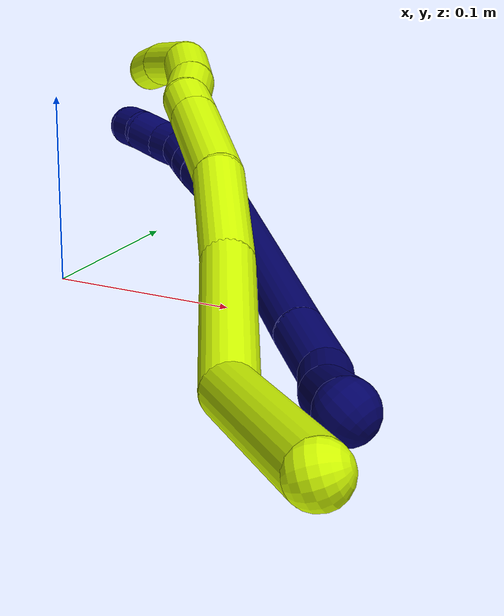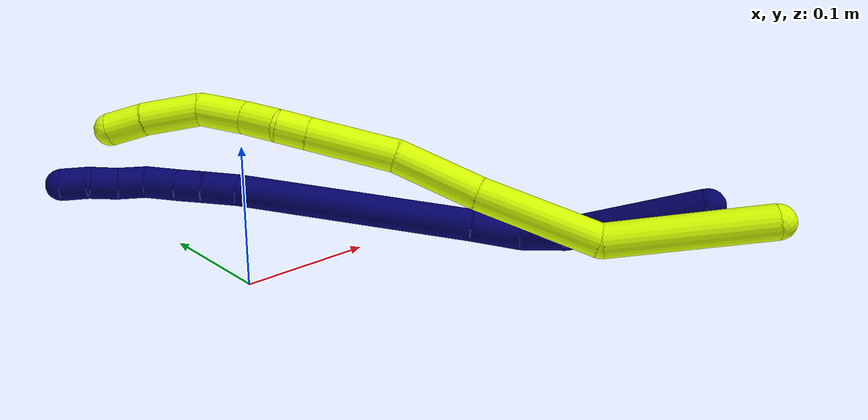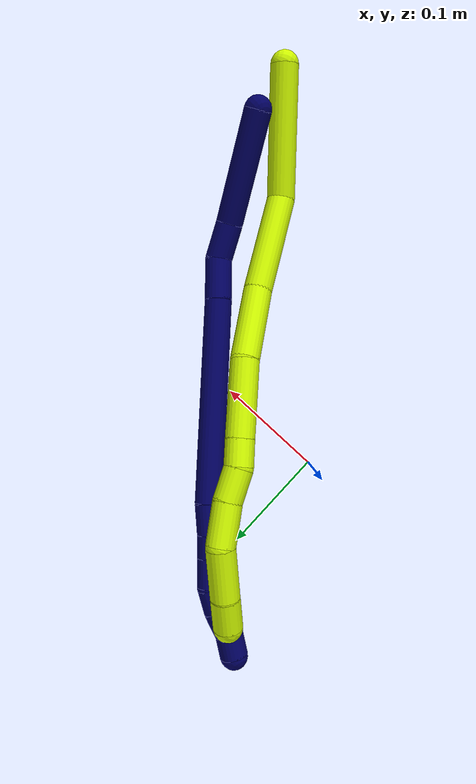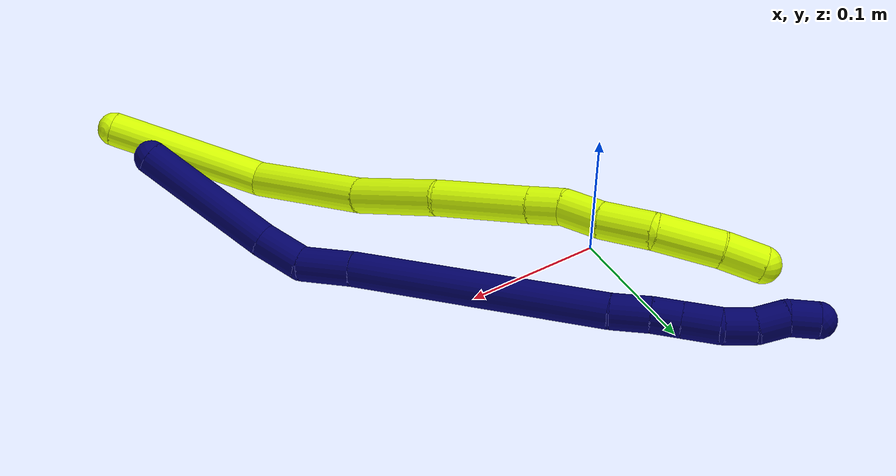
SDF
<sdf version="1.7">
 <world name="default">
  <model name="7">
   <static>0</static>
   <link name="7">
    <collision name="collision-cylinder-e_1_1_4">
     <pose>-0.037691 0.031161 -0.015806 -2.04021 -0.823251 1.23608</pose>
     <geometry><cylinder><radius>0.0125</radius><length>0.102789</length></cylinder></geometry>
     <surface>
      <friction><ode><mu>1.16</mu><mu2>1.16</mu2><slip1>0</slip1><slip2>0</slip2></ode></friction>
      <contact><ode><kp>1e+06</kp><kd>1</kd><max_vel>0</max_vel><min_depth>0.001</min_depth></ode></contact>
     </surface>
    </collision>
    <visual name="visual-cylinder-e_1_1_4">
     <pose>-0.037691 0.031161 -0.015806 -2.04021 -0.823251 1.23608</pose>
     <geometry><cylinder><radius>0.0125</radius><length>0.102789</length></cylinder></geometry>
     <material><ambient>0.003922 0 0.403922 1</ambient></material>
    </visual>
    <collision name="collision-cylinder-e_2_4_5">
     <pose>-0.089043 0.070042 -0.038671 -2.31152 -0.917264 1.68436</pose>
     <geometry><cylinder><radius>0.0125</radius><length>0.034416</length></cylinder></geometry>
     <surface>
      <friction><ode><mu>1.16</mu><mu2>1.16</mu2><slip1>0</slip1><slip2>0</slip2></ode></friction>
      <contact><ode><kp>1e+06</kp><kd>1</kd><max_vel>0</max_vel><min_depth>0.001</min_depth></ode></contact>
     </surface>
    </collision>
    <visual name="visual-cylinder-e_2_4_5">
     <pose>-0.089043 0.070042 -0.038671 -2.31152 -0.917264 1.68436</pose>
     <geometry><cylinder><radius>0.0125</radius><length>0.034416</length></cylinder></geometry>
     <material><ambient>0.003922 0 0.403922 1</ambient></material>
    </visual>
    <collision name="collision-cylinder-e_3_5_6">
     <pose>-0.114329 0.083895 -0.060327 -2.74385 -0.633313 2.03879</pose>
     <geometry><cylinder><radius>0.0125</radius><length>0.03928</length></cylinder></geometry>
     <surface>
      <friction><ode><mu>1.16</mu><mu2>1.16</mu2><slip1>0</slip1><slip2>0</slip2></ode></friction>
      <contact><ode><kp>1e+06</kp><kd>1</kd><max_vel>0</max_vel><min_depth>0.001</min_depth></ode></contact>
     </surface>
    </collision>
    <visual name="visual-cylinder-e_3_5_6">
     <pose>-0.114329 0.083895 -0.060327 -2.74385 -0.633313 2.03879</pose>
     <geometry><cylinder><radius>0.0125</radius><length>0.03928</length></cylinder></geometry>
     <material><ambient>0.003922 0 0.403922 1</ambient></material>
    </visual>
    <collision name="collision-cylinder-e_4_6_7">
     <pose>-0.183948 0.121075 -0.140354 -2.69855 -0.675222 2.00077</pose>
     <geometry><cylinder><radius>0.0125</radius><length>0.185567</length></cylinder></geometry>
     <surface>
      <friction><ode><mu>1.16</mu><mu2>1.16</mu2><slip1>0</slip1><slip2>0</slip2></ode></friction>
      <contact><ode><kp>1e+06</kp><kd>1</kd><max_vel>0</max_vel><min_depth>0.001</min_depth></ode></contact>
     </surface>
    </collision>
    <visual name="visual-cylinder-e_4_6_7">
     <pose>-0.183948 0.121075 -0.140354 -2.69855 -0.675222 2.00077</pose>
     <geometry><cylinder><radius>0.0125</radius><length>0.185567</length></cylinder></geometry>
     <material><ambient>0.003922 0 0.403922 1</ambient></material>
    </visual>
    <collision name="collision-cylinder-e_5_7_8">
     <pose>-0.249151 0.157468 -0.216197 -2.6672 -0.551942 1.72838</pose>
     <geometry><cylinder><radius>0.0125</radius><length>0.02749</length></cylinder></geometry>
     <surface>
      <friction><ode><mu>1.16</mu><mu2>1.16</mu2><slip1>0</slip1><slip2>0</slip2></ode></friction>
      <contact><ode><kp>1e+06</kp><kd>1</kd><max_vel>0</max_vel><min_depth>0.001</min_depth></ode></contact>
     </surface>
    </collision>
    <visual name="visual-cylinder-e_5_7_8">
     <pose>-0.249151 0.157468 -0.216197 -2.6672 -0.551942 1.72838</pose>
     <geometry><cylinder><radius>0.0125</radius><length>0.02749</length></cylinder></geometry>
     <material><ambient>0.003922 0 0.403922 1</ambient></material>
    </visual>
    <collision name="collision-cylinder-e_6_8_9">
     <pose>-0.262404 0.166963 -0.233955 -2.62763 -0.621721 1.77039</pose>
     <geometry><cylinder><radius>0.0125</radius><length>0.02076</length></cylinder></geometry>
     <surface>
      <friction><ode><mu>1.16</mu><mu2>1.16</mu2><slip1>0</slip1><slip2>0</slip2></ode></friction>
      <contact><ode><kp>1e+06</kp><kd>1</kd><max_vel>0</max_vel><min_depth>0.001</min_depth></ode></contact>
     </surface>
    </collision>
    <visual name="visual-cylinder-e_6_8_9">
     <pose>-0.262404 0.166963 -0.233955 -2.62763 -0.621721 1.77039</pose>
     <geometry><cylinder><radius>0.0125</radius><length>0.02076</length></cylinder></geometry>
     <material><ambient>0.003922 0 0.403922 1</ambient></material>
    </visual>
    <collision name="collision-cylinder-e_7_9_10">
     <pose>-0.276103 0.176015 -0.250456 -2.64977 -0.635169 1.83734</pose>
     <geometry><cylinder><radius>0.0125</radius><length>0.0258</length></cylinder></geometry>
     <surface>
      <friction><ode><mu>1.16</mu><mu2>1.16</mu2><slip1>0</slip1><slip2>0</slip2></ode></friction>
      <contact><ode><kp>1e+06</kp><kd>1</kd><max_vel>0</max_vel><min_depth>0.001</min_depth></ode></contact>
     </surface>
    </collision>
    <visual name="visual-cylinder-e_7_9_10">
     <pose>-0.276103 0.176015 -0.250456 -2.64977 -0.635169 1.83734</pose>
     <geometry><cylinder><radius>0.0125</radius><length>0.0258</length></cylinder></geometry>
     <material><ambient>0.003922 0 0.403922 1</ambient></material>
    </visual>
    <collision name="collision-cylinder-e_8_10_11">
     <pose>-0.287522 0.186482 -0.268136 -2.56343 -0.354237 1.08353</pose>
     <geometry><cylinder><radius>0.0125</radius><length>0.02171</length></cylinder></geometry>
     <surface>
      <friction><ode><mu>1.16</mu><mu2>1.16</mu2><slip1>0</slip1><slip2>0</slip2></ode></friction>
      <contact><ode><kp>1e+06</kp><kd>1</kd><max_vel>0</max_vel><min_depth>0.001</min_depth></ode></contact>
     </surface>
    </collision>
    <visual name="visual-cylinder-e_8_10_11">
     <pose>-0.287522 0.186482 -0.268136 -2.56343 -0.354237 1.08353</pose>
     <geometry><cylinder><radius>0.0125</radius><length>0.02171</length></cylinder></geometry>
     <material><ambient>0.003922 0 0.403922 1</ambient></material>
    </visual>
    <collision name="collision-cylinder-e_9_11_12">
     <pose>-0.292898 0.196328 -0.28659 -2.73442 -0.147844 0.688844</pose>
     <geometry><cylinder><radius>0.0125</radius><length>0.021862</length></cylinder></geometry>
     <surface>
      <friction><ode><mu>1.16</mu><mu2>1.16</mu2><slip1>0</slip1><slip2>0</slip2></ode></friction>
      <contact><ode><kp>1e+06</kp><kd>1</kd><max_vel>0</max_vel><min_depth>0.001</min_depth></ode></contact>
     </surface>
    </collision>
    <visual name="visual-cylinder-e_9_11_12">
     <pose>-0.292898 0.196328 -0.28659 -2.73442 -0.147844 0.688844</pose>
     <geometry><cylinder><radius>0.0125</radius><length>0.021862</length></cylinder></geometry>
     <material><ambient>0.003922 0 0.403922 1</ambient></material>
    </visual>
    <collision name="collision-cylinder-e_10_12_2">
     <pose>-0.298635 0.206028 -0.304062 -2.51869 -0.418083 1.16531</pose>
     <geometry><cylinder><radius>0.0125</radius><length>0.020327</length></cylinder></geometry>
     <surface>
      <friction><ode><mu>1.16</mu><mu2>1.16</mu2><slip1>0</slip1><slip2>0</slip2></ode></friction>
      <contact><ode><kp>1e+06</kp><kd>1</kd><max_vel>0</max_vel><min_depth>0.001</min_depth></ode></contact>
     </surface>
    </collision>
    <visual name="visual-cylinder-e_10_12_2">
     <pose>-0.298635 0.206028 -0.304062 -2.51869 -0.418083 1.16531</pose>
     <geometry><cylinder><radius>0.0125</radius><length>0.020327</length></cylinder></geometry>
     <material><ambient>0.003922 0 0.403922 1</ambient></material>
    </visual>
    <collision name="collision-sphere-2">
     <pose>-0.302761 0.211447 -0.311605 0 -0 0</pose>
     <geometry><sphere><radius>0.0125</radius></sphere></geometry>
     <surface>
      <friction><ode><mu>1.16</mu><mu2>1.16</mu2><slip1>0</slip1><slip2>0</slip2></ode></friction>
      <contact><ode><kp>1e+06</kp><kd>1</kd><max_vel>0</max_vel><min_depth>0.001</min_depth></ode></contact>
     </surface>
    </collision>
    <visual name="visual-sphere-2">
     <pose>-0.302761 0.211447 -0.311605 0 -0 0</pose>
     <geometry><sphere><radius>0.0125</radius></sphere></geometry>
     <material><ambient>0.003922 0 0.403922 1</ambient></material>
    </visual>
    <collision name="collision-sphere-12">
     <pose>-0.294508 0.200609 -0.296518 0 -0 0</pose>
     <geometry><sphere><radius>0.0125</radius></sphere></geometry>
     <surface>
      <friction><ode><mu>1.16</mu><mu2>1.16</mu2><slip1>0</slip1><slip2>0</slip2></ode></friction>
      <contact><ode><kp>1e+06</kp><kd>1</kd><max_vel>0</max_vel><min_depth>0.001</min_depth></ode></contact>
     </surface>
    </collision>
    <visual name="visual-sphere-12">
     <pose>-0.294508 0.200609 -0.296518 0 -0 0</pose>
     <geometry><sphere><radius>0.0125</radius></sphere></geometry>
     <material><ambient>0.003922 0 0.403922 1</ambient></material>
    </visual>
    <collision name="collision-sphere-11">
     <pose>-0.291288 0.192046 -0.276662 0 -0 0</pose>
     <geometry><sphere><radius>0.0125</radius></sphere></geometry>
     <surface>
      <friction><ode><mu>1.16</mu><mu2>1.16</mu2><slip1>0</slip1><slip2>0</slip2></ode></friction>
      <contact><ode><kp>1e+06</kp><kd>1</kd><max_vel>0</max_vel><min_depth>0.001</min_depth></ode></contact>
     </surface>
    </collision>
    <visual name="visual-sphere-11">
     <pose>-0.291288 0.192046 -0.276662 0 -0 0</pose>
     <geometry><sphere><radius>0.0125</radius></sphere></geometry>
     <material><ambient>0.003922 0 0.403922 1</ambient></material>
    </visual>
    <collision name="collision-sphere-10">
     <pose>-0.283757 0.180918 -0.259609 0 -0 0</pose>
     <geometry><sphere><radius>0.0125</radius></sphere></geometry>
     <surface>
      <friction><ode><mu>1.16</mu><mu2>1.16</mu2><slip1>0</slip1><slip2>0</slip2></ode></friction>
      <contact><ode><kp>1e+06</kp><kd>1</kd><max_vel>0</max_vel><min_depth>0.001</min_depth></ode></contact>
     </surface>
    </collision>
    <visual name="visual-sphere-10">
     <pose>-0.283757 0.180918 -0.259609 0 -0 0</pose>
     <geometry><sphere><radius>0.0125</radius></sphere></geometry>
     <material><ambient>0.003922 0 0.403922 1</ambient></material>
    </visual>
    <collision name="collision-sphere-9">
     <pose>-0.26845 0.171111 -0.241303 0 -0 0</pose>
     <geometry><sphere><radius>0.0125</radius></sphere></geometry>
     <surface>
      <friction><ode><mu>1.16</mu><mu2>1.16</mu2><slip1>0</slip1><slip2>0</slip2></ode></friction>
      <contact><ode><kp>1e+06</kp><kd>1</kd><max_vel>0</max_vel><min_depth>0.001</min_depth></ode></contact>
     </surface>
    </collision>
    <visual name="visual-sphere-9">
     <pose>-0.26845 0.171111 -0.241303 0 -0 0</pose>
     <geometry><sphere><radius>0.0125</radius></sphere></geometry>
     <material><ambient>0.003922 0 0.403922 1</ambient></material>
    </visual>
    <collision name="collision-sphere-4">
     <pose>-0.075381 0.062321 -0.031611 0 -0 0</pose>
     <geometry><sphere><radius>0.0125</radius></sphere></geometry>
     <surface>
      <friction><ode><mu>1.16</mu><mu2>1.16</mu2><slip1>0</slip1><slip2>0</slip2></ode></friction>
      <contact><ode><kp>1e+06</kp><kd>1</kd><max_vel>0</max_vel><min_depth>0.001</min_depth></ode></contact>
     </surface>
    </collision>
    <visual name="visual-sphere-4">
     <pose>-0.075381 0.062321 -0.031611 0 -0 0</pose>
     <geometry><sphere><radius>0.0125</radius></sphere></geometry>
     <material><ambient>0.003922 0 0.403922 1</ambient></material>
    </visual>
    <collision name="collision-sphere-1">
     <geometry><sphere><radius>0.0125</radius></sphere></geometry>
     <surface>
      <friction><ode><mu>1.16</mu><mu2>1.16</mu2><slip1>0</slip1><slip2>0</slip2></ode></friction>
      <contact><ode><kp>1e+06</kp><kd>1</kd><max_vel>0</max_vel><min_depth>0.001</min_depth></ode></contact>
     </surface>
    </collision>
    <visual name="visual-sphere-1">
     <geometry><sphere><radius>0.0125</radius></sphere></geometry>
     <material><ambient>0.003922 0 0.403922 1</ambient></material>
    </visual>
    <collision name="collision-sphere-8">
     <pose>-0.256358 0.162815 -0.226608 0 -0 0</pose>
     <geometry><sphere><radius>0.0125</radius></sphere></geometry>
     <surface>
      <friction><ode><mu>1.16</mu><mu2>1.16</mu2><slip1>0</slip1><slip2>0</slip2></ode></friction>
      <contact><ode><kp>1e+06</kp><kd>1</kd><max_vel>0</max_vel><min_depth>0.001</min_depth></ode></contact>
     </surface>
    </collision>
    <visual name="visual-sphere-8">
     <pose>-0.256358 0.162815 -0.226608 0 -0 0</pose>
     <geometry><sphere><radius>0.0125</radius></sphere></geometry>
     <material><ambient>0.003922 0 0.403922 1</ambient></material>
    </visual>
    <collision name="collision-sphere-5">
     <pose>-0.102705 0.077763 -0.045732 0 -0 0</pose>
     <geometry><sphere><radius>0.0125</radius></sphere></geometry>
     <surface>
      <friction><ode><mu>1.16</mu><mu2>1.16</mu2><slip1>0</slip1><slip2>0</slip2></ode></friction>
      <contact><ode><kp>1e+06</kp><kd>1</kd><max_vel>0</max_vel><min_depth>0.001</min_depth></ode></contact>
     </surface>
    </collision>
    <visual name="visual-sphere-5">
     <pose>-0.102705 0.077763 -0.045732 0 -0 0</pose>
     <geometry><sphere><radius>0.0125</radius></sphere></geometry>
     <material><ambient>0.003922 0 0.403922 1</ambient></material>
    </visual>
    <collision name="collision-sphere-6">
     <pose>-0.125952 0.090027 -0.074922 0 -0 0</pose>
     <geometry><sphere><radius>0.0125</radius></sphere></geometry>
     <surface>
      <friction><ode><mu>1.16</mu><mu2>1.16</mu2><slip1>0</slip1><slip2>0</slip2></ode></friction>
      <contact><ode><kp>1e+06</kp><kd>1</kd><max_vel>0</max_vel><min_depth>0.001</min_depth></ode></contact>
     </surface>
    </collision>
    <visual name="visual-sphere-6">
     <pose>-0.125952 0.090027 -0.074922 0 -0 0</pose>
     <geometry><sphere><radius>0.0125</radius></sphere></geometry>
     <material><ambient>0.003922 0 0.403922 1</ambient></material>
    </visual>
    <collision name="collision-sphere-7">
     <pose>-0.241944 0.152122 -0.205785 0 -0 0</pose>
     <geometry><sphere><radius>0.0125</radius></sphere></geometry>
     <surface>
      <friction><ode><mu>1.16</mu><mu2>1.16</mu2><slip1>0</slip1><slip2>0</slip2></ode></friction>
      <contact><ode><kp>1e+06</kp><kd>1</kd><max_vel>0</max_vel><min_depth>0.001</min_depth></ode></contact>
     </surface>
    </collision>
    <visual name="visual-sphere-7">
     <pose>-0.241944 0.152122 -0.205785 0 -0 0</pose>
     <geometry><sphere><radius>0.0125</radius></sphere></geometry>
     <material><ambient>0.003922 0 0.403922 1</ambient></material>
    </visual>
    <inertial>
     <pose>-0.1674 0.112482 -0.133799 0 -0 0</pose>
     <mass>0.5</mass>
     <inertia>
      <ixx>0.000281</ixx>
      <ixy>0</ixy>
      <ixz>0</ixz>
      <iyy>0.000865</iyy>
      <iyz>0</iyz>
      <izz>0.000148</izz>
     </inertia>
    </inertial>
   </link>
   <pose>0.251404 -0.199844 0.051773 -2.14383 0.002343 -1.76456</pose>
  </model>
  <model name="15">
   <static>0</static>
   <link name="15">
    <collision name="collision-cylinder-e_1_1_4">
     <pose>-0.030392 0.042224 -0.025613 -2.11606 -0.551682 0.931716</pose>
     <geometry><cylinder><radius>0.0125</radius><length>0.115975</length></cylinder></geometry>
     <surface>
      <friction><ode><mu>1.16</mu><mu2>1.16</mu2><slip1>0</slip1><slip2>0</slip2></ode></friction>
      <contact><ode><kp>1e+06</kp><kd>1</kd><max_vel>0</max_vel><min_depth>0.001</min_depth></ode></contact>
     </surface>
    </collision>
    <visual name="visual-cylinder-e_1_1_4">
     <pose>-0.030392 0.042224 -0.025613 -2.11606 -0.551682 0.931716</pose>
     <geometry><cylinder><radius>0.0125</radius><length>0.115975</length></cylinder></geometry>
     <material><ambient>0.835294 1 0 1</ambient></material>
    </visual>
    <collision name="collision-cylinder-e_2_4_5">
     <pose>-0.097952 0.110582 -0.055009 -1.71455 -0.953059 1.0754</pose>
     <geometry><cylinder><radius>0.0125</radius><length>0.091186</length></cylinder></geometry>
     <surface>
      <friction><ode><mu>1.16</mu><mu2>1.16</mu2><slip1>0</slip1><slip2>0</slip2></ode></friction>
      <contact><ode><kp>1e+06</kp><kd>1</kd><max_vel>0</max_vel><min_depth>0.001</min_depth></ode></contact>
     </surface>
    </collision>
    <visual name="visual-cylinder-e_2_4_5">
     <pose>-0.097952 0.110582 -0.055009 -1.71455 -0.953059 1.0754</pose>
     <geometry><cylinder><radius>0.0125</radius><length>0.091186</length></cylinder></geometry>
     <material><ambient>0.835294 1 0 1</ambient></material>
    </visual>
    <collision name="collision-cylinder-e_3_5_6">
     <pose>-0.16356 0.152484 -0.062125 -1.77912 -1.05527 1.24647</pose>
     <geometry><cylinder><radius>0.0125</radius><length>0.065378</length></cylinder></geometry>
     <surface>
      <friction><ode><mu>1.16</mu><mu2>1.16</mu2><slip1>0</slip1><slip2>0</slip2></ode></friction>
      <contact><ode><kp>1e+06</kp><kd>1</kd><max_vel>0</max_vel><min_depth>0.001</min_depth></ode></contact>
     </surface>
    </collision>
    <visual name="visual-cylinder-e_3_5_6">
     <pose>-0.16356 0.152484 -0.062125 -1.77912 -1.05527 1.24647</pose>
     <geometry><cylinder><radius>0.0125</radius><length>0.065378</length></cylinder></geometry>
     <material><ambient>0.835294 1 0 1</ambient></material>
    </visual>
    <collision name="collision-cylinder-e_4_6_7">
     <pose>-0.218773 0.18627 -0.074451 -2.03373 -0.925877 1.35791</pose>
     <geometry><cylinder><radius>0.0125</radius><length>0.067002</length></cylinder></geometry>
     <surface>
      <friction><ode><mu>1.16</mu><mu2>1.16</mu2><slip1>0</slip1><slip2>0</slip2></ode></friction>
      <contact><ode><kp>1e+06</kp><kd>1</kd><max_vel>0</max_vel><min_depth>0.001</min_depth></ode></contact>
     </surface>
    </collision>
    <visual name="visual-cylinder-e_4_6_7">
     <pose>-0.218773 0.18627 -0.074451 -2.03373 -0.925877 1.35791</pose>
     <geometry><cylinder><radius>0.0125</radius><length>0.067002</length></cylinder></geometry>
     <material><ambient>0.835294 1 0 1</ambient></material>
    </visual>
    <collision name="collision-cylinder-e_5_7_8">
     <pose>-0.254931 0.210417 -0.086689 -2.0577 -0.934552 1.39497</pose>
     <geometry><cylinder><radius>0.0125</radius><length>0.023338</length></cylinder></geometry>
     <surface>
      <friction><ode><mu>1.16</mu><mu2>1.16</mu2><slip1>0</slip1><slip2>0</slip2></ode></friction>
      <contact><ode><kp>1e+06</kp><kd>1</kd><max_vel>0</max_vel><min_depth>0.001</min_depth></ode></contact>
     </surface>
    </collision>
    <visual name="visual-cylinder-e_5_7_8">
     <pose>-0.254931 0.210417 -0.086689 -2.0577 -0.934552 1.39497</pose>
     <geometry><cylinder><radius>0.0125</radius><length>0.023338</length></cylinder></geometry>
     <material><ambient>0.835294 1 0 1</ambient></material>
    </visual>
    <collision name="collision-cylinder-e_6_8_9">
     <pose>-0.274355 0.226531 -0.09101 -1.67825 -0.785069 0.864066</pose>
     <geometry><cylinder><radius>0.0125</radius><length>0.028402</length></cylinder></geometry>
     <surface>
      <friction><ode><mu>1.16</mu><mu2>1.16</mu2><slip1>0</slip1><slip2>0</slip2></ode></friction>
      <contact><ode><kp>1e+06</kp><kd>1</kd><max_vel>0</max_vel><min_depth>0.001</min_depth></ode></contact>
     </surface>
    </collision>
    <visual name="visual-cylinder-e_6_8_9">
     <pose>-0.274355 0.226531 -0.09101 -1.67825 -0.785069 0.864066</pose>
     <geometry><cylinder><radius>0.0125</radius><length>0.028402</length></cylinder></geometry>
     <material><ambient>0.835294 1 0 1</ambient></material>
    </visual>
    <collision name="collision-cylinder-e_7_9_10">
     <pose>-0.297838 0.248122 -0.096163 -1.90851 -0.829874 1.11227</pose>
     <geometry><cylinder><radius>0.0125</radius><length>0.036443</length></cylinder></geometry>
     <surface>
      <friction><ode><mu>1.16</mu><mu2>1.16</mu2><slip1>0</slip1><slip2>0</slip2></ode></friction>
      <contact><ode><kp>1e+06</kp><kd>1</kd><max_vel>0</max_vel><min_depth>0.001</min_depth></ode></contact>
     </surface>
    </collision>
    <visual name="visual-cylinder-e_7_9_10">
     <pose>-0.297838 0.248122 -0.096163 -1.90851 -0.829874 1.11227</pose>
     <geometry><cylinder><radius>0.0125</radius><length>0.036443</length></cylinder></geometry>
     <material><ambient>0.835294 1 0 1</ambient></material>
    </visual>
    <collision name="collision-cylinder-e_8_10_11">
     <pose>-0.322516 0.274698 -0.11186 -2.23092 -0.535028 1.0206</pose>
     <geometry><cylinder><radius>0.0125</radius><length>0.044064</length></cylinder></geometry>
     <surface>
      <friction><ode><mu>1.16</mu><mu2>1.16</mu2><slip1>0</slip1><slip2>0</slip2></ode></friction>
      <contact><ode><kp>1e+06</kp><kd>1</kd><max_vel>0</max_vel><min_depth>0.001</min_depth></ode></contact>
     </surface>
    </collision>
    <visual name="visual-cylinder-e_8_10_11">
     <pose>-0.322516 0.274698 -0.11186 -2.23092 -0.535028 1.0206</pose>
     <geometry><cylinder><radius>0.0125</radius><length>0.044064</length></cylinder></geometry>
     <material><ambient>0.835294 1 0 1</ambient></material>
    </visual>
    <collision name="collision-cylinder-e_9_11_2">
     <pose>-0.339576 0.299879 -0.131279 -2.22295 -0.425796 0.824092</pose>
     <geometry><cylinder><radius>0.0125</radius><length>0.028211</length></cylinder></geometry>
     <surface>
      <friction><ode><mu>1.16</mu><mu2>1.16</mu2><slip1>0</slip1><slip2>0</slip2></ode></friction>
      <contact><ode><kp>1e+06</kp><kd>1</kd><max_vel>0</max_vel><min_depth>0.001</min_depth></ode></contact>
     </surface>
    </collision>
    <visual name="visual-cylinder-e_9_11_2">
     <pose>-0.339576 0.299879 -0.131279 -2.22295 -0.425796 0.824092</pose>
     <geometry><cylinder><radius>0.0125</radius><length>0.028211</length></cylinder></geometry>
     <material><ambient>0.835294 1 0 1</ambient></material>
    </visual>
    <collision name="collision-sphere-2">
     <pose>-0.345402 0.310089 -0.139075 0 -0 0</pose>
     <geometry><sphere><radius>0.0125</radius></sphere></geometry>
     <surface>
      <friction><ode><mu>1.16</mu><mu2>1.16</mu2><slip1>0</slip1><slip2>0</slip2></ode></friction>
      <contact><ode><kp>1e+06</kp><kd>1</kd><max_vel>0</max_vel><min_depth>0.001</min_depth></ode></contact>
     </surface>
    </collision>
    <visual name="visual-sphere-2">
     <pose>-0.345402 0.310089 -0.139075 0 -0 0</pose>
     <geometry><sphere><radius>0.0125</radius></sphere></geometry>
     <material><ambient>0.835294 1 0 1</ambient></material>
    </visual>
    <collision name="collision-sphere-11">
     <pose>-0.333749 0.28967 -0.123483 0 -0 0</pose>
     <geometry><sphere><radius>0.0125</radius></sphere></geometry>
     <surface>
      <friction><ode><mu>1.16</mu><mu2>1.16</mu2><slip1>0</slip1><slip2>0</slip2></ode></friction>
      <contact><ode><kp>1e+06</kp><kd>1</kd><max_vel>0</max_vel><min_depth>0.001</min_depth></ode></contact>
     </surface>
    </collision>
    <visual name="visual-sphere-11">
     <pose>-0.333749 0.28967 -0.123483 0 -0 0</pose>
     <geometry><sphere><radius>0.0125</radius></sphere></geometry>
     <material><ambient>0.835294 1 0 1</ambient></material>
    </visual>
    <collision name="collision-sphere-10">
     <pose>-0.311282 0.259727 -0.100238 0 -0 0</pose>
     <geometry><sphere><radius>0.0125</radius></sphere></geometry>
     <surface>
      <friction><ode><mu>1.16</mu><mu2>1.16</mu2><slip1>0</slip1><slip2>0</slip2></ode></friction>
      <contact><ode><kp>1e+06</kp><kd>1</kd><max_vel>0</max_vel><min_depth>0.001</min_depth></ode></contact>
     </surface>
    </collision>
    <visual name="visual-sphere-10">
     <pose>-0.311282 0.259727 -0.100238 0 -0 0</pose>
     <geometry><sphere><radius>0.0125</radius></sphere></geometry>
     <material><ambient>0.835294 1 0 1</ambient></material>
    </visual>
    <collision name="collision-sphere-9">
     <pose>-0.284393 0.236518 -0.092088 0 -0 0</pose>
     <geometry><sphere><radius>0.0125</radius></sphere></geometry>
     <surface>
      <friction><ode><mu>1.16</mu><mu2>1.16</mu2><slip1>0</slip1><slip2>0</slip2></ode></friction>
      <contact><ode><kp>1e+06</kp><kd>1</kd><max_vel>0</max_vel><min_depth>0.001</min_depth></ode></contact>
     </surface>
    </collision>
    <visual name="visual-sphere-9">
     <pose>-0.284393 0.236518 -0.092088 0 -0 0</pose>
     <geometry><sphere><radius>0.0125</radius></sphere></geometry>
     <material><ambient>0.835294 1 0 1</ambient></material>
    </visual>
    <collision name="collision-sphere-4">
     <pose>-0.060785 0.084447 -0.051226 0 -0 0</pose>
     <geometry><sphere><radius>0.0125</radius></sphere></geometry>
     <surface>
      <friction><ode><mu>1.16</mu><mu2>1.16</mu2><slip1>0</slip1><slip2>0</slip2></ode></friction>
      <contact><ode><kp>1e+06</kp><kd>1</kd><max_vel>0</max_vel><min_depth>0.001</min_depth></ode></contact>
     </surface>
    </collision>
    <visual name="visual-sphere-4">
     <pose>-0.060785 0.084447 -0.051226 0 -0 0</pose>
     <geometry><sphere><radius>0.0125</radius></sphere></geometry>
     <material><ambient>0.835294 1 0 1</ambient></material>
    </visual>
    <collision name="collision-sphere-1">
     <geometry><sphere><radius>0.0125</radius></sphere></geometry>
     <surface>
      <friction><ode><mu>1.16</mu><mu2>1.16</mu2><slip1>0</slip1><slip2>0</slip2></ode></friction>
      <contact><ode><kp>1e+06</kp><kd>1</kd><max_vel>0</max_vel><min_depth>0.001</min_depth></ode></contact>
     </surface>
    </collision>
    <visual name="visual-sphere-1">
     <geometry><sphere><radius>0.0125</radius></sphere></geometry>
     <material><ambient>0.835294 1 0 1</ambient></material>
    </visual>
    <collision name="collision-sphere-8">
     <pose>-0.264317 0.216545 -0.089933 0 -0 0</pose>
     <geometry><sphere><radius>0.0125</radius></sphere></geometry>
     <surface>
      <friction><ode><mu>1.16</mu><mu2>1.16</mu2><slip1>0</slip1><slip2>0</slip2></ode></friction>
      <contact><ode><kp>1e+06</kp><kd>1</kd><max_vel>0</max_vel><min_depth>0.001</min_depth></ode></contact>
     </surface>
    </collision>
    <visual name="visual-sphere-8">
     <pose>-0.264317 0.216545 -0.089933 0 -0 0</pose>
     <geometry><sphere><radius>0.0125</radius></sphere></geometry>
     <material><ambient>0.835294 1 0 1</ambient></material>
    </visual>
    <collision name="collision-sphere-5">
     <pose>-0.135119 0.136717 -0.058792 0 -0 0</pose>
     <geometry><sphere><radius>0.0125</radius></sphere></geometry>
     <surface>
      <friction><ode><mu>1.16</mu><mu2>1.16</mu2><slip1>0</slip1><slip2>0</slip2></ode></friction>
      <contact><ode><kp>1e+06</kp><kd>1</kd><max_vel>0</max_vel><min_depth>0.001</min_depth></ode></contact>
     </surface>
    </collision>
    <visual name="visual-sphere-5">
     <pose>-0.135119 0.136717 -0.058792 0 -0 0</pose>
     <geometry><sphere><radius>0.0125</radius></sphere></geometry>
     <material><ambient>0.835294 1 0 1</ambient></material>
    </visual>
    <collision name="collision-sphere-6">
     <pose>-0.192001 0.168251 -0.065458 0 -0 0</pose>
     <geometry><sphere><radius>0.0125</radius></sphere></geometry>
     <surface>
      <friction><ode><mu>1.16</mu><mu2>1.16</mu2><slip1>0</slip1><slip2>0</slip2></ode></friction>
      <contact><ode><kp>1e+06</kp><kd>1</kd><max_vel>0</max_vel><min_depth>0.001</min_depth></ode></contact>
     </surface>
    </collision>
    <visual name="visual-sphere-6">
     <pose>-0.192001 0.168251 -0.065458 0 -0 0</pose>
     <geometry><sphere><radius>0.0125</radius></sphere></geometry>
     <material><ambient>0.835294 1 0 1</ambient></material>
    </visual>
    <collision name="collision-sphere-7">
     <pose>-0.245545 0.204289 -0.083445 0 -0 0</pose>
     <geometry><sphere><radius>0.0125</radius></sphere></geometry>
     <surface>
      <friction><ode><mu>1.16</mu><mu2>1.16</mu2><slip1>0</slip1><slip2>0</slip2></ode></friction>
      <contact><ode><kp>1e+06</kp><kd>1</kd><max_vel>0</max_vel><min_depth>0.001</min_depth></ode></contact>
     </surface>
    </collision>
    <visual name="visual-sphere-7">
     <pose>-0.245545 0.204289 -0.083445 0 -0 0</pose>
     <geometry><sphere><radius>0.0125</radius></sphere></geometry>
     <material><ambient>0.835294 1 0 1</ambient></material>
    </visual>
    <inertial>
     <pose>-0.172391 0.156763 -0.067563 0 -0 0</pose>
     <mass>0.5</mass>
     <inertia><ixx>0.000245</ixx><ixy>0</ixy><ixz>0</ixz><iyy>0.000283</iyy><iyz>0</iyz><izz>-6e-06</izz></inertia>
    </inertial>
   </link>
   <pose>0.261117 -0.245027 0.050582 -1.02709 0.851478 -0.844775</pose>
  </model>
 </world>
</sdf>
